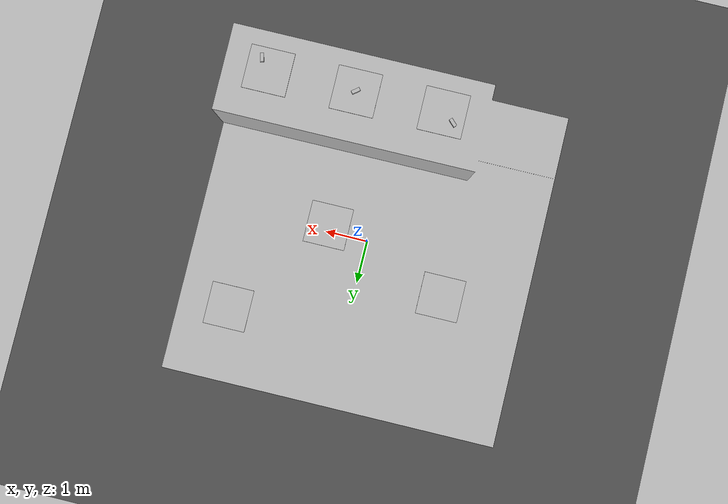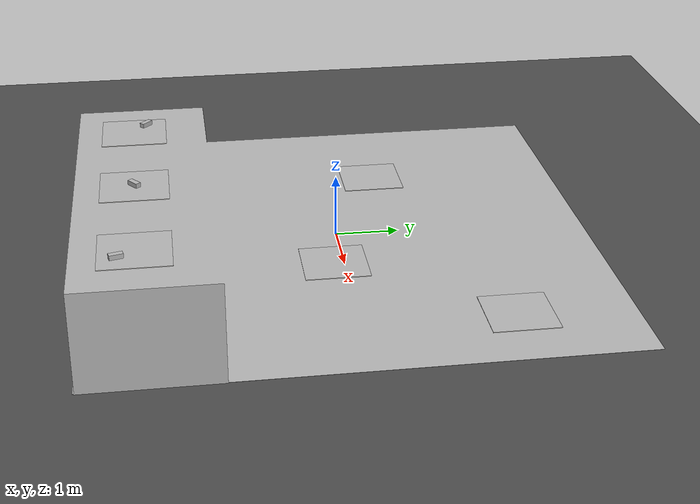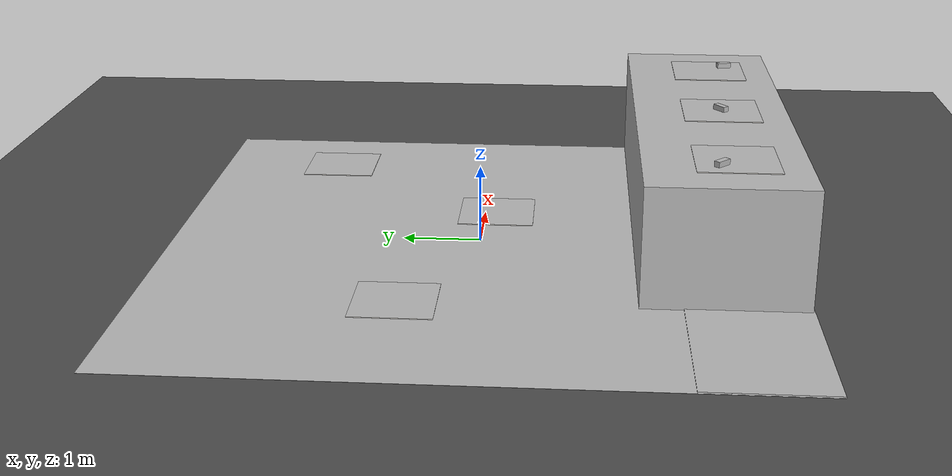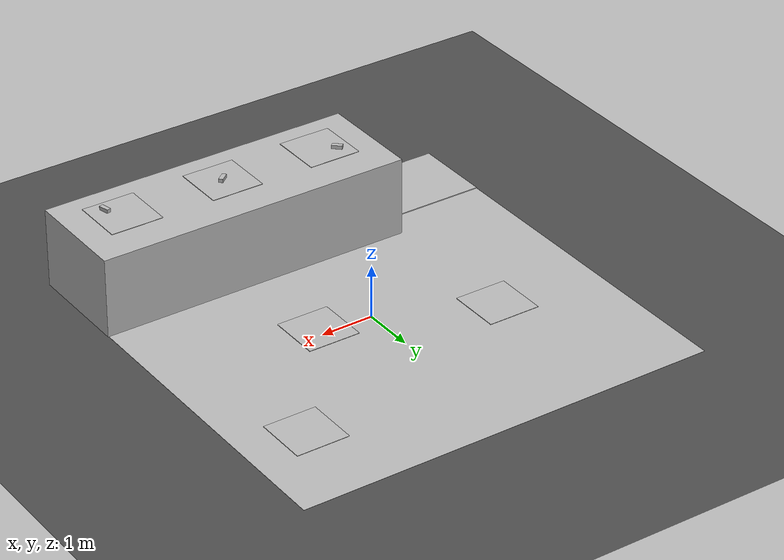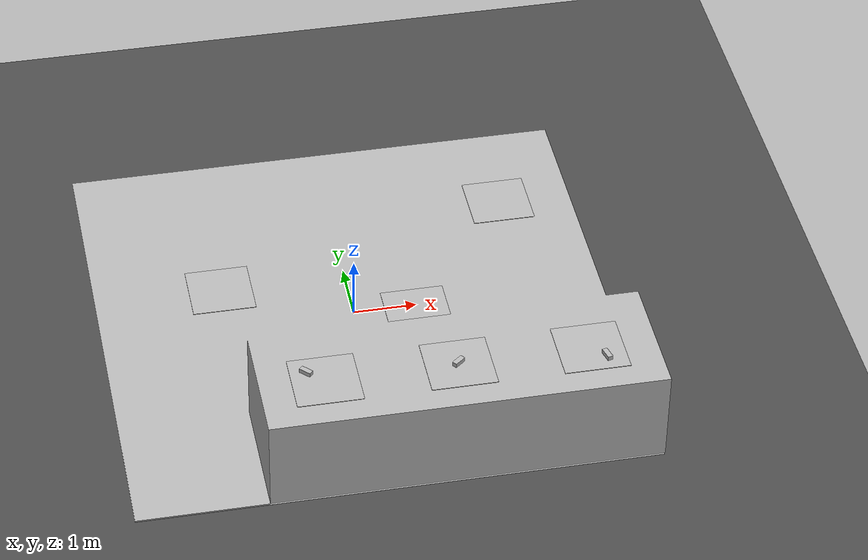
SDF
<?xml version="1.0" ?>
<sdf version="1.9">
  <world name="map">
    <physics name="1ms" type="ignore">
      <max_step_size>0.001</max_step_size>
      <real_time_factor>1.0</real_time_factor>
    </physics>

    <plugin filename="gz-sim-physics-system"
      name="gz::sim::systems::Physics">
    </plugin>
    <plugin
      filename="gz-sim-sensors-system"
      name="gz::sim::systems::Sensors">
      <render_engine>ogre2</render_engine>
    </plugin>
    <plugin filename="gz-sim-user-commands-system"
      name="gz::sim::systems::UserCommands">
    </plugin>
    <plugin filename="gz-sim-scene-broadcaster-system"
      name="gz::sim::systems::SceneBroadcaster">
    </plugin>
    <plugin filename="gz-sim-air-pressure-system"
      name="gz::sim::systems::AirPressure">
    </plugin>
    <plugin filename="gz-sim-air-speed-system"
      name="gz::sim::systems::AirSpeed">
    </plugin>
    <plugin filename="gz-sim-altimeter-system"
      name="gz::sim::systems::Altimeter">
    </plugin>
    <plugin filename="gz-sim-imu-system"
      name="gz::sim::systems::Imu">
    </plugin>
    <plugin filename="gz-sim-magnetometer-system"
      name="gz::sim::systems::Magnetometer">
    </plugin>
    <plugin filename="gz-sim-navsat-system"
      name="gz::sim::systems::NavSat">
    </plugin>

    <scene>
      <ambient>1.0 1.0 1.0</ambient>
      <background>0.8 0.8 0.8</background>
      <sky></sky>
    </scene>

    <light type="directional" name="sun">
      <cast_shadows>true</cast_shadows>
      <pose>0 0 10 0 0 0</pose>
      <diffuse>0.8 0.8 0.8 1</diffuse>
      <specular>0.8 0.8 0.8 1</specular>
      <attenuation>
        <range>1000</range>
        <constant>0.9</constant>
        <linear>0.01</linear>
        <quadratic>0.001</quadratic>
      </attenuation>
      <direction>-0.5 0.1 -0.9</direction>
    </light>

    <spherical_coordinates>
      <latitude_deg>-35.3632621</latitude_deg>
      <longitude_deg>149.1652374</longitude_deg>
      <elevation>10.0</elevation>
      <heading_deg>0</heading_deg>
      <surface_model>EARTH_WGS84</surface_model>
    </spherical_coordinates>

    <model name="object_3">
      <pose>-2.00 0.87 0.01 0 0 0</pose>
      <static>1</static>
      <link name="link">
        <collision name="collision">
          <geometry>
            <box>
              <size>1 1 0.05</size>
            </box>
          </geometry>
        </collision>
        <visual name="visual">
          <geometry>
            <mesh>
              <uri>model://Robocup1/meshes/SmallBaseGround.dae</uri>
            </mesh>
          </geometry>
        </visual>
      </link>
    </model>

    <model name="object_4">
      <pose>1 -3.1 1.5 0 0 0</pose>
      <static>1</static>
      <link name="link">
        <collision name="collision">
          <geometry>
            <box>
              <size>1 1 0.05</size>
            </box>
          </geometry>
        </collision>
        <visual name="visual">
          <geometry>
            <mesh>
              <uri>model://Robocup1/meshes/SmallBaseGround.dae</uri>
            </mesh>
          </geometry>
        </visual>
      </link>
    </model>

    <model name="object_9">
      <pose>1 -3.1 1.56 0 0 0.67</pose>
      <static>1</static>
      <link name="link">
        <collision name="collision">
          <geometry>
            <box>
              <size>0.195 0.08 0.07</size>
            </box>
          </geometry>
        </collision>
        <visual name="visual">
          <geometry>
            <box>
              <size>0.195 0.08 0.07</size>
            </box>
          </geometry>
        </visual>
      </link>
    </model>

    <model name="object_7">
      <pose>3 -3.1 1.5 0 0 0</pose>
      <static>1</static>
      <link name="link">
        <collision name="collision">
          <geometry>
            <box>
              <size>1 1 0.05</size>
            </box>
          </geometry>
        </collision>
        <visual name="visual">
          <geometry>
            <mesh>
              <uri>model://Robocup1/meshes/SmallBaseGround.dae</uri>
            </mesh>
          </geometry>
        </visual>
      </link>
    </model>

    <model name="object_10">
      <pose>3.20 -3.34 1.56 0 0 -1.32</pose>
      <static>1</static>
      <link name="link">
        <collision name="collision">
          <geometry>
            <box>
              <size>0.195 0.08 0.07</size>
            </box>
          </geometry>
        </collision>
        <visual name="visual">
          <geometry>
            <box>
              <size>0.195 0.08 0.07</size>
            </box>
          </geometry>
        </visual>
      </link>
    </model>

    <model name="object_8">
      <pose>-1 -3.1 1.5 0 0 0</pose>
      <static>1</static>
      <link name="link">
        <collision name="collision">
          <geometry>
            <box>
              <size>1 1 0.05</size>
            </box>
          </geometry>
        </collision>
        <visual name="visual">
          <geometry>
            <mesh>
              <uri>model://Robocup1/meshes/SmallBaseGround.dae</uri>
            </mesh>
          </geometry>
        </visual>
      </link>
    </model>

    <model name="object_11">
      <pose>-1.25 -2.91 1.56 0 0 -0.78</pose>
      <static>1</static>
      <link name="link">
        <collision name="collision">
          <geometry>
            <box>
              <size>0.195 0.08 0.07</size>
            </box>
          </geometry>
        </collision>
        <visual name="visual">
          <geometry>
            <box>
              <size>0.195 0.08 0.07</size>
            </box>
          </geometry>
        </visual>
      </link>
    </model>

    <model name="object_5">
      <pose>2.81 2.26 0.01 0 0 0</pose>
      <static>1</static>
      <link name="link">
        <collision name="collision">
          <geometry>
            <box>
              <size>1 1 0.05</size>
            </box>
          </geometry>
        </collision>
        <visual name="visual">
          <geometry>
            <mesh>
              <uri>model://Robocup1/meshes/SmallBaseGround.dae</uri>
            </mesh>
          </geometry>
        </visual>
      </link>
    </model>

    <model name="object_6">
      <pose>0.98 -0.16 0.01 0 0 0</pose>
      <static>1</static>
      <link name="link">
        <collision name="collision">
          <geometry>
            <box>
              <size>1 1 0.05</size>
            </box>
          </geometry>
        </collision>
        <visual name="visual">
          <geometry>
            <mesh>
              <uri>model://Robocup1/meshes/SmallBaseGround.dae</uri>
            </mesh>
          </geometry>
        </visual>
      </link>
    </model>

    <model name='terrain_1'>
      <pose>0 0 0 0 -0 0</pose>
      <static>1</static>
      <link name='body'>
        <collision name='collision'>
          <pose>1 -3.0 0 0 0 0</pose>
          <geometry>
            <box>
              <size>6 2 3</size>
            </box>
          </geometry>
          <max_contacts>10</max_contacts>
          <surface>
            <contact>
              <ode/>
            </contact>
            <bounce/>
            <friction>
              <torsional>
                <ode/>
              </torsional>
              <ode/>
            </friction>
          </surface>
        </collision>
        <visual name='visual'>
          <geometry>
            <mesh>
              <uri>model://Robocup1/meshes/Robocup1.dae</uri>
            </mesh>
          </geometry>
        </visual>
        <self_collide>0</self_collide>
        <enable_wind>0</enable_wind>
        <kinematic>0</kinematic>
      </link>
    </model>

    <model name="floor">
      <static>true</static>
      <link name="link">
        <collision name="collision">
          <geometry>
            <plane>
              <normal>0 0 1</normal>
              <size>100 100</size>
            </plane>
          </geometry>
          <surface>
            <friction>
              <ode>
                <mu>100</mu>
                <mu2>50</mu2>
              </ode>
            </friction>
          </surface>
        </collision>
        <visual name="visual">
          <cast_shadows>false</cast_shadows>
          <geometry>
            <plane>
              <normal>0 0 1</normal>
              <size>100 100</size>
            </plane>
          </geometry>
          <material>
            <diffuse>0.3 0.3 0.3 1</diffuse>
          </material>
        </visual>
      </link>
    </model>

  </world>
</sdf>
